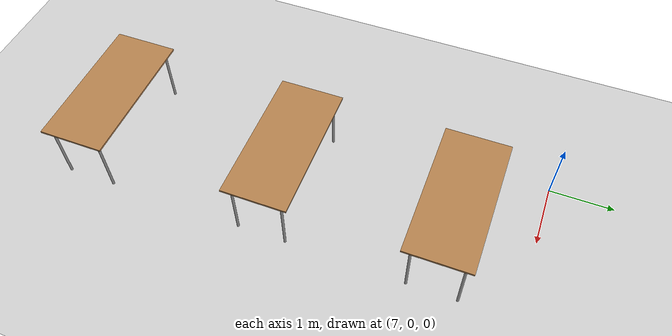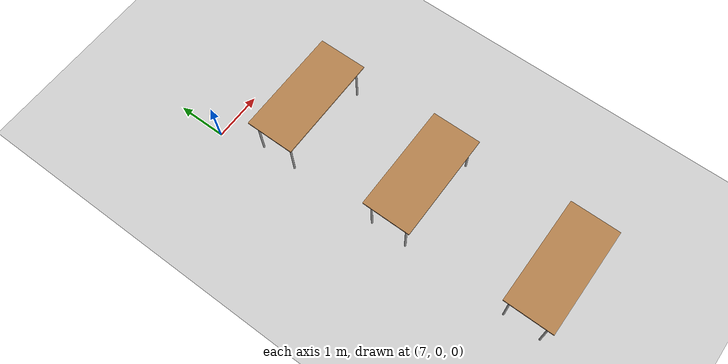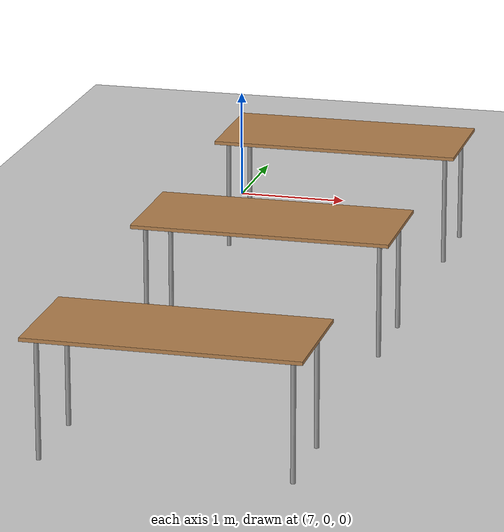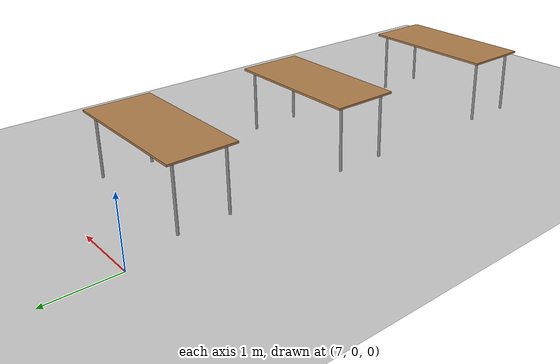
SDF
<sdf version="1.6">
 <world name="default">
  <model name="ground_plane">
   <static>1</static>
   <link name="link">
    <collision name="collision">
     <geometry><plane><normal>0 0 1</normal><size>100 100</size></plane></geometry>
     <surface>
      <contact><collide_bitmask>65535</collide_bitmask></contact>
      <friction><ode><mu>100</mu><mu2>50</mu2></ode></friction>
     </surface>
    </collision>
    <visual name="visual">
     <cast_shadows>0</cast_shadows>
     <geometry><plane><normal>0 0 1</normal><size>100 100</size></plane></geometry>
     <material>
      <script><uri>file://media/materials/scripts/gazebo.material</uri><name>Gazebo/Grey</name></script>
     </material>
    </visual>
   </link>
  </model>
  <model name="mi_og">
   <link name="link_clone">
    <pose>-0.022325 2.22236 0 0 -0 0</pose>
    <inertial>
     <mass>1</mass>
     <inertia><ixx>1</ixx><ixy>0</ixy><ixz>0</ixz><iyy>1</iyy><iyz>0</iyz><izz>1</izz></inertia>
    </inertial>
    <visual name="front_right_leg">
     <pose>1 -0.38 0.5 0 -0 0</pose>
     <geometry><cylinder><radius>0.02</radius><length>1</length></cylinder></geometry>
     <material>
      <script><uri>file://media/materials/scripts/gazebo.material</uri><name>Gazebo/Grey</name></script>
      <shader type="vertex"><normal_map>__default__</normal_map></shader>
      <ambient>0.3 0.3 0.3 1</ambient>
      <diffuse>0.7 0.7 0.7 1</diffuse>
      <specular>0.01 0.01 0.01 1</specular>
      <emissive>0 0 0 1</emissive>
     </material>
    </visual>
    <visual name="front_left_leg">
     <pose>1 0.38 0.5 0 -0 0</pose>
     <geometry><cylinder><radius>0.02</radius><length>1</length></cylinder></geometry>
     <material>
      <script><uri>file://media/materials/scripts/gazebo.material</uri><name>Gazebo/Grey</name></script>
      <shader type="vertex"><normal_map>__default__</normal_map></shader>
      <ambient>0.3 0.3 0.3 1</ambient>
      <diffuse>0.7 0.7 0.7 1</diffuse>
      <specular>0.01 0.01 0.01 1</specular>
      <emissive>0 0 0 1</emissive>
     </material>
    </visual>
    <visual name="visual1">
     <pose>0 0 1 0 -0 0</pose>
     <geometry><box><size>2.2 1 0.03</size></box></geometry>
     <material>
      <script><uri>file://media/materials/scripts/gazebo.material</uri><name>Gazebo/Wood</name></script>
      <shader type="vertex"><normal_map>__default__</normal_map></shader>
      <ambient>1 1 1 1</ambient>
      <diffuse>1 1 1 1</diffuse>
      <specular>0.2 0.2 0.2 1</specular>
      <emissive>0 0 0 1</emissive>
     </material>
    </visual>
    <visual name="back_right_leg">
     <pose>-1 -0.38 0.5 0 -0 0</pose>
     <geometry><cylinder><radius>0.02</radius><length>1</length></cylinder></geometry>
     <material>
      <script><uri>file://media/materials/scripts/gazebo.material</uri><name>Gazebo/Grey</name></script>
      <shader type="vertex"><normal_map>__default__</normal_map></shader>
      <ambient>0.3 0.3 0.3 1</ambient>
      <diffuse>0.7 0.7 0.7 1</diffuse>
      <specular>0.01 0.01 0.01 1</specular>
      <emissive>0 0 0 1</emissive>
     </material>
    </visual>
    <visual name="back_left_leg">
     <pose>-1 0.38 0.5 0 -0 0</pose>
     <geometry><cylinder><radius>0.02</radius><length>1</length></cylinder></geometry>
     <material>
      <script><uri>file://media/materials/scripts/gazebo.material</uri><name>Gazebo/Grey</name></script>
      <shader type="vertex"><normal_map>__default__</normal_map></shader>
      <ambient>0.3 0.3 0.3 1</ambient>
      <diffuse>0.7 0.7 0.7 1</diffuse>
      <specular>0.01 0.01 0.01 1</specular>
      <emissive>0 0 0 1</emissive>
     </material>
    </visual>
    <collision name="surface">
     <pose>0 0 1 0 -0 0</pose>
     <geometry><box><size>2.2 1 0.03</size></box></geometry>
     <surface>
      <friction>
       <ode><mu>1</mu><mu2>1</mu2><fdir1>0 0 0</fdir1><slip1>0</slip1><slip2>0</slip2></ode>
       <torsional>
        <coefficient>1</coefficient>
        <patch_radius>0</patch_radius>
        <surface_radius>0</surface_radius>
        <use_patch_radius>1</use_patch_radius>
        <ode><slip>0</slip></ode>
       </torsional>
      </friction>
      <bounce><restitution_coefficient>0</restitution_coefficient><threshold>1e+06</threshold></bounce>
      <contact>
       <collide_without_contact>0</collide_without_contact>
       <collide_without_contact_bitmask>1</collide_without_contact_bitmask>
       <collide_bitmask>1</collide_bitmask>
       <ode>
        <soft_cfm>0</soft_cfm>
        <soft_erp>0.2</soft_erp>
        <kp>1e+13</kp>
        <kd>1</kd>
        <max_vel>0.01</max_vel>
        <min_depth>0</min_depth>
       </ode>
       <bullet>
        <split_impulse>1</split_impulse>
        <split_impulse_penetration_threshold>-0.01</split_impulse_penetration_threshold>
        <soft_cfm>0</soft_cfm>
        <soft_erp>0.2</soft_erp>
        <kp>1e+13</kp>
        <kd>1</kd>
       </bullet>
      </contact>
     </surface>
    </collision>
    <collision name="front_left_leg_0">
     <pose>1 0.38 0.5 0 -0 0</pose>
     <geometry><cylinder><radius>0.02</radius><length>1</length></cylinder></geometry>
     <surface>
      <friction>
       <ode><mu>1</mu><mu2>1</mu2><fdir1>0 0 0</fdir1><slip1>0</slip1><slip2>0</slip2></ode>
       <torsional>
        <coefficient>1</coefficient>
        <patch_radius>0</patch_radius>
        <surface_radius>0</surface_radius>
        <use_patch_radius>1</use_patch_radius>
        <ode><slip>0</slip></ode>
       </torsional>
      </friction>
      <bounce><restitution_coefficient>0</restitution_coefficient><threshold>1e+06</threshold></bounce>
      <contact>
       <collide_without_contact>0</collide_without_contact>
       <collide_without_contact_bitmask>1</collide_without_contact_bitmask>
       <collide_bitmask>1</collide_bitmask>
       <ode>
        <soft_cfm>0</soft_cfm>
        <soft_erp>0.2</soft_erp>
        <kp>1e+13</kp>
        <kd>1</kd>
        <max_vel>0.01</max_vel>
        <min_depth>0</min_depth>
       </ode>
       <bullet>
        <split_impulse>1</split_impulse>
        <split_impulse_penetration_threshold>-0.01</split_impulse_penetration_threshold>
        <soft_cfm>0</soft_cfm>
        <soft_erp>0.2</soft_erp>
        <kp>1e+13</kp>
        <kd>1</kd>
       </bullet>
      </contact>
     </surface>
    </collision>
    <collision name="front_right_leg_0">
     <pose>1 -0.38 0.5 0 -0 0</pose>
     <geometry><cylinder><radius>0.02</radius><length>1</length></cylinder></geometry>
     <surface>
      <friction>
       <ode><mu>1</mu><mu2>1</mu2><fdir1>0 0 0</fdir1><slip1>0</slip1><slip2>0</slip2></ode>
       <torsional>
        <coefficient>1</coefficient>
        <patch_radius>0</patch_radius>
        <surface_radius>0</surface_radius>
        <use_patch_radius>1</use_patch_radius>
        <ode><slip>0</slip></ode>
       </torsional>
      </friction>
      <bounce><restitution_coefficient>0</restitution_coefficient><threshold>1e+06</threshold></bounce>
      <contact>
       <collide_without_contact>0</collide_without_contact>
       <collide_without_contact_bitmask>1</collide_without_contact_bitmask>
       <collide_bitmask>1</collide_bitmask>
       <ode>
        <soft_cfm>0</soft_cfm>
        <soft_erp>0.2</soft_erp>
        <kp>1e+13</kp>
        <kd>1</kd>
        <max_vel>0.01</max_vel>
        <min_depth>0</min_depth>
       </ode>
       <bullet>
        <split_impulse>1</split_impulse>
        <split_impulse_penetration_threshold>-0.01</split_impulse_penetration_threshold>
        <soft_cfm>0</soft_cfm>
        <soft_erp>0.2</soft_erp>
        <kp>1e+13</kp>
        <kd>1</kd>
       </bullet>
      </contact>
     </surface>
    </collision>
    <collision name="back_left_leg_0">
     <pose>-1 0.38 0.5 0 -0 0</pose>
     <geometry><cylinder><radius>0.02</radius><length>1</length></cylinder></geometry>
     <surface>
      <friction>
       <ode><mu>1</mu><mu2>1</mu2><fdir1>0 0 0</fdir1><slip1>0</slip1><slip2>0</slip2></ode>
       <torsional>
        <coefficient>1</coefficient>
        <patch_radius>0</patch_radius>
        <surface_radius>0</surface_radius>
        <use_patch_radius>1</use_patch_radius>
        <ode><slip>0</slip></ode>
       </torsional>
      </friction>
      <bounce><restitution_coefficient>0</restitution_coefficient><threshold>1e+06</threshold></bounce>
      <contact>
       <collide_without_contact>0</collide_without_contact>
       <collide_without_contact_bitmask>1</collide_without_contact_bitmask>
       <collide_bitmask>1</collide_bitmask>
       <ode>
        <soft_cfm>0</soft_cfm>
        <soft_erp>0.2</soft_erp>
        <kp>1e+13</kp>
        <kd>1</kd>
        <max_vel>0.01</max_vel>
        <min_depth>0</min_depth>
       </ode>
       <bullet>
        <split_impulse>1</split_impulse>
        <split_impulse_penetration_threshold>-0.01</split_impulse_penetration_threshold>
        <soft_cfm>0</soft_cfm>
        <soft_erp>0.2</soft_erp>
        <kp>1e+13</kp>
        <kd>1</kd>
       </bullet>
      </contact>
     </surface>
    </collision>
    <collision name="back_right_leg_0">
     <pose>-1 -0.38 0.5 0 -0 0</pose>
     <geometry><cylinder><radius>0.02</radius><length>1</length></cylinder></geometry>
     <surface>
      <friction>
       <ode><mu>1</mu><mu2>1</mu2><fdir1>0 0 0</fdir1><slip1>0</slip1><slip2>0</slip2></ode>
       <torsional>
        <coefficient>1</coefficient>
        <patch_radius>0</patch_radius>
        <surface_radius>0</surface_radius>
        <use_patch_radius>1</use_patch_radius>
        <ode><slip>0</slip></ode>
       </torsional>
      </friction>
      <bounce><restitution_coefficient>0</restitution_coefficient><threshold>1e+06</threshold></bounce>
      <contact>
       <collide_without_contact>0</collide_without_contact>
       <collide_without_contact_bitmask>1</collide_without_contact_bitmask>
       <collide_bitmask>1</collide_bitmask>
       <ode>
        <soft_cfm>0</soft_cfm>
        <soft_erp>0.2</soft_erp>
        <kp>1e+13</kp>
        <kd>1</kd>
        <max_vel>0.01</max_vel>
        <min_depth>0</min_depth>
       </ode>
       <bullet>
        <split_impulse>1</split_impulse>
        <split_impulse_penetration_threshold>-0.01</split_impulse_penetration_threshold>
        <soft_cfm>0</soft_cfm>
        <soft_erp>0.2</soft_erp>
        <kp>1e+13</kp>
        <kd>1</kd>
       </bullet>
      </contact>
     </surface>
    </collision>
   </link>
   <link name="link_clone_0">
    <pose>-0.000595 4.85022 0 0 -0 0</pose>
    <inertial>
     <mass>1</mass>
     <inertia><ixx>1</ixx><ixy>0</ixy><ixz>0</ixz><iyy>1</iyy><iyz>0</iyz><izz>1</izz></inertia>
    </inertial>
    <visual name="front_left_leg">
     <pose>1 0.38 0.5 0 -0 0</pose>
     <geometry><cylinder><radius>0.02</radius><length>1</length></cylinder></geometry>
     <material>
      <script><uri>file://media/materials/scripts/gazebo.material</uri><name>Gazebo/Grey</name></script>
      <shader type="vertex"><normal_map>__default__</normal_map></shader>
      <ambient>0.3 0.3 0.3 1</ambient>
      <diffuse>0.7 0.7 0.7 1</diffuse>
      <specular>0.01 0.01 0.01 1</specular>
      <emissive>0 0 0 1</emissive>
     </material>
    </visual>
    <visual name="front_right_leg">
     <pose>1 -0.38 0.5 0 -0 0</pose>
     <geometry><cylinder><radius>0.02</radius><length>1</length></cylinder></geometry>
     <material>
      <script><uri>file://media/materials/scripts/gazebo.material</uri><name>Gazebo/Grey</name></script>
      <shader type="vertex"><normal_map>__default__</normal_map></shader>
      <ambient>0.3 0.3 0.3 1</ambient>
      <diffuse>0.7 0.7 0.7 1</diffuse>
      <specular>0.01 0.01 0.01 1</specular>
      <emissive>0 0 0 1</emissive>
     </material>
    </visual>
    <visual name="back_right_leg">
     <pose>-1 -0.38 0.5 0 -0 0</pose>
     <geometry><cylinder><radius>0.02</radius><length>1</length></cylinder></geometry>
     <material>
      <script><uri>file://media/materials/scripts/gazebo.material</uri><name>Gazebo/Grey</name></script>
      <shader type="vertex"><normal_map>__default__</normal_map></shader>
      <ambient>0.3 0.3 0.3 1</ambient>
      <diffuse>0.7 0.7 0.7 1</diffuse>
      <specular>0.01 0.01 0.01 1</specular>
      <emissive>0 0 0 1</emissive>
     </material>
    </visual>
    <visual name="back_left_leg">
     <pose>-1 0.38 0.5 0 -0 0</pose>
     <geometry><cylinder><radius>0.02</radius><length>1</length></cylinder></geometry>
     <material>
      <script><uri>file://media/materials/scripts/gazebo.material</uri><name>Gazebo/Grey</name></script>
      <shader type="vertex"><normal_map>__default__</normal_map></shader>
      <ambient>0.3 0.3 0.3 1</ambient>
      <diffuse>0.7 0.7 0.7 1</diffuse>
      <specular>0.01 0.01 0.01 1</specular>
      <emissive>0 0 0 1</emissive>
     </material>
    </visual>
    <visual name="visual1">
     <pose>0 0 1 0 -0 0</pose>
     <geometry><box><size>2.2 1 0.03</size></box></geometry>
     <material>
      <script><uri>file://media/materials/scripts/gazebo.material</uri><name>Gazebo/Wood</name></script>
      <shader type="vertex"><normal_map>__default__</normal_map></shader>
      <ambient>1 1 1 1</ambient>
      <diffuse>1 1 1 1</diffuse>
      <specular>0.2 0.2 0.2 1</specular>
      <emissive>0 0 0 1</emissive>
     </material>
    </visual>
    <collision name="surface">
     <pose>0 0 1 0 -0 0</pose>
     <geometry><box><size>2.2 1 0.03</size></box></geometry>
     <surface>
      <friction>
       <ode><mu>1</mu><mu2>1</mu2><fdir1>0 0 0</fdir1><slip1>0</slip1><slip2>0</slip2></ode>
       <torsional>
        <coefficient>1</coefficient>
        <patch_radius>0</patch_radius>
        <surface_radius>0</surface_radius>
        <use_patch_radius>1</use_patch_radius>
        <ode><slip>0</slip></ode>
       </torsional>
      </friction>
      <bounce><restitution_coefficient>0</restitution_coefficient><threshold>1e+06</threshold></bounce>
      <contact>
       <collide_without_contact>0</collide_without_contact>
       <collide_without_contact_bitmask>1</collide_without_contact_bitmask>
       <collide_bitmask>1</collide_bitmask>
       <ode>
        <soft_cfm>0</soft_cfm>
        <soft_erp>0.2</soft_erp>
        <kp>1e+13</kp>
        <kd>1</kd>
        <max_vel>0.01</max_vel>
        <min_depth>0</min_depth>
       </ode>
       <bullet>
        <split_impulse>1</split_impulse>
        <split_impulse_penetration_threshold>-0.01</split_impulse_penetration_threshold>
        <soft_cfm>0</soft_cfm>
        <soft_erp>0.2</soft_erp>
        <kp>1e+13</kp>
        <kd>1</kd>
       </bullet>
      </contact>
     </surface>
    </collision>
    <collision name="front_left_leg_0">
     <pose>1 0.38 0.5 0 -0 0</pose>
     <geometry><cylinder><radius>0.02</radius><length>1</length></cylinder></geometry>
     <surface>
      <friction>
       <ode><mu>1</mu><mu2>1</mu2><fdir1>0 0 0</fdir1><slip1>0</slip1><slip2>0</slip2></ode>
       <torsional>
        <coefficient>1</coefficient>
        <patch_radius>0</patch_radius>
        <surface_radius>0</surface_radius>
        <use_patch_radius>1</use_patch_radius>
        <ode><slip>0</slip></ode>
       </torsional>
      </friction>
      <bounce><restitution_coefficient>0</restitution_coefficient><threshold>1e+06</threshold></bounce>
      <contact>
       <collide_without_contact>0</collide_without_contact>
       <collide_without_contact_bitmask>1</collide_without_contact_bitmask>
       <collide_bitmask>1</collide_bitmask>
       <ode>
        <soft_cfm>0</soft_cfm>
        <soft_erp>0.2</soft_erp>
        <kp>1e+13</kp>
        <kd>1</kd>
        <max_vel>0.01</max_vel>
        <min_depth>0</min_depth>
       </ode>
       <bullet>
        <split_impulse>1</split_impulse>
        <split_impulse_penetration_threshold>-0.01</split_impulse_penetration_threshold>
        <soft_cfm>0</soft_cfm>
        <soft_erp>0.2</soft_erp>
        <kp>1e+13</kp>
        <kd>1</kd>
       </bullet>
      </contact>
     </surface>
    </collision>
    <collision name="front_right_leg_0">
     <pose>1 -0.38 0.5 0 -0 0</pose>
     <geometry><cylinder><radius>0.02</radius><length>1</length></cylinder></geometry>
     <surface>
      <friction>
       <ode><mu>1</mu><mu2>1</mu2><fdir1>0 0 0</fdir1><slip1>0</slip1><slip2>0</slip2></ode>
       <torsional>
        <coefficient>1</coefficient>
        <patch_radius>0</patch_radius>
        <surface_radius>0</surface_radius>
        <use_patch_radius>1</use_patch_radius>
        <ode><slip>0</slip></ode>
       </torsional>
      </friction>
      <bounce><restitution_coefficient>0</restitution_coefficient><threshold>1e+06</threshold></bounce>
      <contact>
       <collide_without_contact>0</collide_without_contact>
       <collide_without_contact_bitmask>1</collide_without_contact_bitmask>
       <collide_bitmask>1</collide_bitmask>
       <ode>
        <soft_cfm>0</soft_cfm>
        <soft_erp>0.2</soft_erp>
        <kp>1e+13</kp>
        <kd>1</kd>
        <max_vel>0.01</max_vel>
        <min_depth>0</min_depth>
       </ode>
       <bullet>
        <split_impulse>1</split_impulse>
        <split_impulse_penetration_threshold>-0.01</split_impulse_penetration_threshold>
        <soft_cfm>0</soft_cfm>
        <soft_erp>0.2</soft_erp>
        <kp>1e+13</kp>
        <kd>1</kd>
       </bullet>
      </contact>
     </surface>
    </collision>
    <collision name="back_right_leg_0">
     <pose>-1 -0.38 0.5 0 -0 0</pose>
     <geometry><cylinder><radius>0.02</radius><length>1</length></cylinder></geometry>
     <surface>
      <friction>
       <ode><mu>1</mu><mu2>1</mu2><fdir1>0 0 0</fdir1><slip1>0</slip1><slip2>0</slip2></ode>
       <torsional>
        <coefficient>1</coefficient>
        <patch_radius>0</patch_radius>
        <surface_radius>0</surface_radius>
        <use_patch_radius>1</use_patch_radius>
        <ode><slip>0</slip></ode>
       </torsional>
      </friction>
      <bounce><restitution_coefficient>0</restitution_coefficient><threshold>1e+06</threshold></bounce>
      <contact>
       <collide_without_contact>0</collide_without_contact>
       <collide_without_contact_bitmask>1</collide_without_contact_bitmask>
       <collide_bitmask>1</collide_bitmask>
       <ode>
        <soft_cfm>0</soft_cfm>
        <soft_erp>0.2</soft_erp>
        <kp>1e+13</kp>
        <kd>1</kd>
        <max_vel>0.01</max_vel>
        <min_depth>0</min_depth>
       </ode>
       <bullet>
        <split_impulse>1</split_impulse>
        <split_impulse_penetration_threshold>-0.01</split_impulse_penetration_threshold>
        <soft_cfm>0</soft_cfm>
        <soft_erp>0.2</soft_erp>
        <kp>1e+13</kp>
        <kd>1</kd>
       </bullet>
      </contact>
     </surface>
    </collision>
    <collision name="back_left_leg_0">
     <pose>-1 0.38 0.5 0 -0 0</pose>
     <geometry><cylinder><radius>0.02</radius><length>1</length></cylinder></geometry>
     <surface>
      <friction>
       <ode><mu>1</mu><mu2>1</mu2><fdir1>0 0 0</fdir1><slip1>0</slip1><slip2>0</slip2></ode>
       <torsional>
        <coefficient>1</coefficient>
        <patch_radius>0</patch_radius>
        <surface_radius>0</surface_radius>
        <use_patch_radius>1</use_patch_radius>
        <ode><slip>0</slip></ode>
       </torsional>
      </friction>
      <bounce><restitution_coefficient>0</restitution_coefficient><threshold>1e+06</threshold></bounce>
      <contact>
       <collide_without_contact>0</collide_without_contact>
       <collide_without_contact_bitmask>1</collide_without_contact_bitmask>
       <collide_bitmask>1</collide_bitmask>
       <ode>
        <soft_cfm>0</soft_cfm>
        <soft_erp>0.2</soft_erp>
        <kp>1e+13</kp>
        <kd>1</kd>
        <max_vel>0.01</max_vel>
        <min_depth>0</min_depth>
       </ode>
       <bullet>
        <split_impulse>1</split_impulse>
        <split_impulse_penetration_threshold>-0.01</split_impulse_penetration_threshold>
        <soft_cfm>0</soft_cfm>
        <soft_erp>0.2</soft_erp>
        <kp>1e+13</kp>
        <kd>1</kd>
       </bullet>
      </contact>
     </surface>
    </collision>
   </link>
   <link name="link_clone_clone">
    <pose>-0.034493 -0.696458 0 0 -0 0</pose>
    <inertial>
     <mass>1</mass>
     <inertia><ixx>1</ixx><ixy>0</ixy><ixz>0</ixz><iyy>1</iyy><iyz>0</iyz><izz>1</izz></inertia>
    </inertial>
    <visual name="back_right_leg">
     <pose>-1 -0.38 0.5 0 -0 0</pose>
     <geometry><cylinder><radius>0.02</radius><length>1</length></cylinder></geometry>
     <material>
      <script><uri>file://media/materials/scripts/gazebo.material</uri><name>Gazebo/Grey</name></script>
      <shader type="vertex"><normal_map>__default__</normal_map></shader>
      <ambient>0.3 0.3 0.3 1</ambient>
      <diffuse>0.7 0.7 0.7 1</diffuse>
      <specular>0.01 0.01 0.01 1</specular>
      <emissive>0 0 0 1</emissive>
     </material>
    </visual>
    <visual name="front_left_leg">
     <pose>1 0.38 0.5 0 -0 0</pose>
     <geometry><cylinder><radius>0.02</radius><length>1</length></cylinder></geometry>
     <material>
      <script><uri>file://media/materials/scripts/gazebo.material</uri><name>Gazebo/Grey</name></script>
      <shader type="vertex"><normal_map>__default__</normal_map></shader>
      <ambient>0.3 0.3 0.3 1</ambient>
      <diffuse>0.7 0.7 0.7 1</diffuse>
      <specular>0.01 0.01 0.01 1</specular>
      <emissive>0 0 0 1</emissive>
     </material>
    </visual>
    <visual name="front_right_leg">
     <pose>1 -0.38 0.5 0 -0 0</pose>
     <geometry><cylinder><radius>0.02</radius><length>1</length></cylinder></geometry>
     <material>
      <script><uri>file://media/materials/scripts/gazebo.material</uri><name>Gazebo/Grey</name></script>
      <shader type="vertex"><normal_map>__default__</normal_map></shader>
      <ambient>0.3 0.3 0.3 1</ambient>
      <diffuse>0.7 0.7 0.7 1</diffuse>
      <specular>0.01 0.01 0.01 1</specular>
      <emissive>0 0 0 1</emissive>
     </material>
    </visual>
    <visual name="visual1">
     <pose>0 0 1 0 -0 0</pose>
     <geometry><box><size>2.2 1 0.03</size></box></geometry>
     <material>
      <script><uri>file://media/materials/scripts/gazebo.material</uri><name>Gazebo/Wood</name></script>
      <shader type="vertex"><normal_map>__default__</normal_map></shader>
      <ambient>1 1 1 1</ambient>
      <diffuse>1 1 1 1</diffuse>
      <specular>0.2 0.2 0.2 1</specular>
      <emissive>0 0 0 1</emissive>
     </material>
    </visual>
    <visual name="back_left_leg">
     <pose>-1 0.38 0.5 0 -0 0</pose>
     <geometry><cylinder><radius>0.02</radius><length>1</length></cylinder></geometry>
     <material>
      <script><uri>file://media/materials/scripts/gazebo.material</uri><name>Gazebo/Grey</name></script>
      <shader type="vertex"><normal_map>__default__</normal_map></shader>
      <ambient>0.3 0.3 0.3 1</ambient>
      <diffuse>0.7 0.7 0.7 1</diffuse>
      <specular>0.01 0.01 0.01 1</specular>
      <emissive>0 0 0 1</emissive>
     </material>
    </visual>
    <collision name="back_right_leg_0">
     <pose>-1 -0.38 0.5 0 -0 0</pose>
     <geometry><cylinder><radius>0.02</radius><length>1</length></cylinder></geometry>
     <surface>
      <friction>
       <ode><mu>1</mu><mu2>1</mu2><fdir1>0 0 0</fdir1><slip1>0</slip1><slip2>0</slip2></ode>
       <torsional>
        <coefficient>1</coefficient>
        <patch_radius>0</patch_radius>
        <surface_radius>0</surface_radius>
        <use_patch_radius>1</use_patch_radius>
        <ode><slip>0</slip></ode>
       </torsional>
      </friction>
      <bounce><restitution_coefficient>0</restitution_coefficient><threshold>1e+06</threshold></bounce>
      <contact>
       <collide_without_contact>0</collide_without_contact>
       <collide_without_contact_bitmask>1</collide_without_contact_bitmask>
       <collide_bitmask>1</collide_bitmask>
       <ode>
        <soft_cfm>0</soft_cfm>
        <soft_erp>0.2</soft_erp>
        <kp>1e+13</kp>
        <kd>1</kd>
        <max_vel>0.01</max_vel>
        <min_depth>0</min_depth>
       </ode>
       <bullet>
        <split_impulse>1</split_impulse>
        <split_impulse_penetration_threshold>-0.01</split_impulse_penetration_threshold>
        <soft_cfm>0</soft_cfm>
        <soft_erp>0.2</soft_erp>
        <kp>1e+13</kp>
        <kd>1</kd>
       </bullet>
      </contact>
     </surface>
    </collision>
    <collision name="front_left_leg_0">
     <pose>1 0.38 0.5 0 -0 0</pose>
     <geometry><cylinder><radius>0.02</radius><length>1</length></cylinder></geometry>
     <surface>
      <friction>
       <ode><mu>1</mu><mu2>1</mu2><fdir1>0 0 0</fdir1><slip1>0</slip1><slip2>0</slip2></ode>
       <torsional>
        <coefficient>1</coefficient>
        <patch_radius>0</patch_radius>
        <surface_radius>0</surface_radius>
        <use_patch_radius>1</use_patch_radius>
        <ode><slip>0</slip></ode>
       </torsional>
      </friction>
      <bounce><restitution_coefficient>0</restitution_coefficient><threshold>1e+06</threshold></bounce>
      <contact>
       <collide_without_contact>0</collide_without_contact>
       <collide_without_contact_bitmask>1</collide_without_contact_bitmask>
       <collide_bitmask>1</collide_bitmask>
       <ode>
        <soft_cfm>0</soft_cfm>
        <soft_erp>0.2</soft_erp>
        <kp>1e+13</kp>
        <kd>1</kd>
        <max_vel>0.01</max_vel>
        <min_depth>0</min_depth>
       </ode>
       <bullet>
        <split_impulse>1</split_impulse>
        <split_impulse_penetration_threshold>-0.01</split_impulse_penetration_threshold>
        <soft_cfm>0</soft_cfm>
        <soft_erp>0.2</soft_erp>
        <kp>1e+13</kp>
        <kd>1</kd>
       </bullet>
      </contact>
     </surface>
    </collision>
    <collision name="back_left_leg_0">
     <pose>-1 0.38 0.5 0 -0 0</pose>
     <geometry><cylinder><radius>0.02</radius><length>1</length></cylinder></geometry>
     <surface>
      <friction>
       <ode><mu>1</mu><mu2>1</mu2><fdir1>0 0 0</fdir1><slip1>0</slip1><slip2>0</slip2></ode>
       <torsional>
        <coefficient>1</coefficient>
        <patch_radius>0</patch_radius>
        <surface_radius>0</surface_radius>
        <use_patch_radius>1</use_patch_radius>
        <ode><slip>0</slip></ode>
       </torsional>
      </friction>
      <bounce><restitution_coefficient>0</restitution_coefficient><threshold>1e+06</threshold></bounce>
      <contact>
       <collide_without_contact>0</collide_without_contact>
       <collide_without_contact_bitmask>1</collide_without_contact_bitmask>
       <collide_bitmask>1</collide_bitmask>
       <ode>
        <soft_cfm>0</soft_cfm>
        <soft_erp>0.2</soft_erp>
        <kp>1e+13</kp>
        <kd>1</kd>
        <max_vel>0.01</max_vel>
        <min_depth>0</min_depth>
       </ode>
       <bullet>
        <split_impulse>1</split_impulse>
        <split_impulse_penetration_threshold>-0.01</split_impulse_penetration_threshold>
        <soft_cfm>0</soft_cfm>
        <soft_erp>0.2</soft_erp>
        <kp>1e+13</kp>
        <kd>1</kd>
       </bullet>
      </contact>
     </surface>
    </collision>
    <collision name="surface">
     <pose>0 0 1 0 -0 0</pose>
     <geometry><box><size>2.2 1 0.03</size></box></geometry>
     <surface>
      <friction>
       <ode><mu>1</mu><mu2>1</mu2><fdir1>0 0 0</fdir1><slip1>0</slip1><slip2>0</slip2></ode>
       <torsional>
        <coefficient>1</coefficient>
        <patch_radius>0</patch_radius>
        <surface_radius>0</surface_radius>
        <use_patch_radius>1</use_patch_radius>
        <ode><slip>0</slip></ode>
       </torsional>
      </friction>
      <bounce><restitution_coefficient>0</restitution_coefficient><threshold>1e+06</threshold></bounce>
      <contact>
       <collide_without_contact>0</collide_without_contact>
       <collide_without_contact_bitmask>1</collide_without_contact_bitmask>
       <collide_bitmask>1</collide_bitmask>
       <ode>
        <soft_cfm>0</soft_cfm>
        <soft_erp>0.2</soft_erp>
        <kp>1e+13</kp>
        <kd>1</kd>
        <max_vel>0.01</max_vel>
        <min_depth>0</min_depth>
       </ode>
       <bullet>
        <split_impulse>1</split_impulse>
        <split_impulse_penetration_threshold>-0.01</split_impulse_penetration_threshold>
        <soft_cfm>0</soft_cfm>
        <soft_erp>0.2</soft_erp>
        <kp>1e+13</kp>
        <kd>1</kd>
       </bullet>
      </contact>
     </surface>
    </collision>
    <collision name="front_right_leg_0">
     <pose>1 -0.38 0.5 0 -0 0</pose>
     <geometry><cylinder><radius>0.02</radius><length>1</length></cylinder></geometry>
     <surface>
      <friction>
       <ode><mu>1</mu><mu2>1</mu2><fdir1>0 0 0</fdir1><slip1>0</slip1><slip2>0</slip2></ode>
       <torsional>
        <coefficient>1</coefficient>
        <patch_radius>0</patch_radius>
        <surface_radius>0</surface_radius>
        <use_patch_radius>1</use_patch_radius>
        <ode><slip>0</slip></ode>
       </torsional>
      </friction>
      <bounce><restitution_coefficient>0</restitution_coefficient><threshold>1e+06</threshold></bounce>
      <contact>
       <collide_without_contact>0</collide_without_contact>
       <collide_without_contact_bitmask>1</collide_without_contact_bitmask>
       <collide_bitmask>1</collide_bitmask>
       <ode>
        <soft_cfm>0</soft_cfm>
        <soft_erp>0.2</soft_erp>
        <kp>1e+13</kp>
        <kd>1</kd>
        <max_vel>0.01</max_vel>
        <min_depth>0</min_depth>
       </ode>
       <bullet>
        <split_impulse>1</split_impulse>
        <split_impulse_penetration_threshold>-0.01</split_impulse_penetration_threshold>
        <soft_cfm>0</soft_cfm>
        <soft_erp>0.2</soft_erp>
        <kp>1e+13</kp>
        <kd>1</kd>
       </bullet>
      </contact>
     </surface>
    </collision>
   </link>
   <static>1</static>
   <pose>8.29575 -6.07547 0 0 -0 0</pose>
  </model>
 </world>
</sdf>
